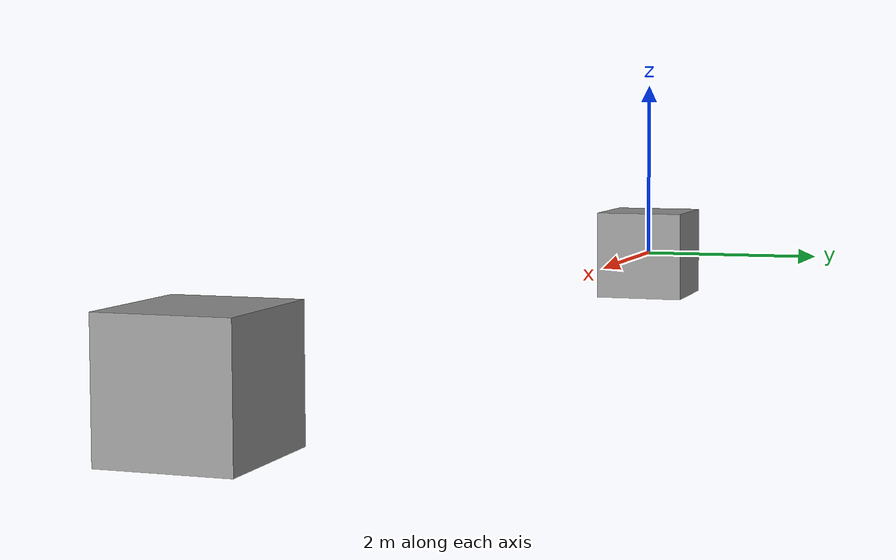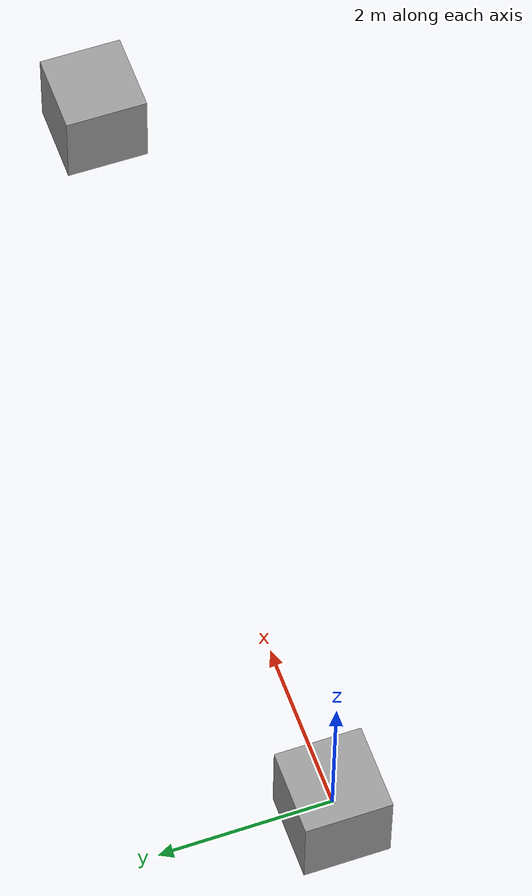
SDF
<?xml version='1.0'?>
<sdf version='1.7'>
  <model name='unit_box'>
    <link name='link'>
      <inertial>
        <mass>1</mass>
        <inertia>
          <ixx>0.166667</ixx>
          <ixy>0</ixy>
          <ixz>0</ixz>
          <iyy>0.166667</iyy>
          <iyz>0</iyz>
          <izz>0.166667</izz>
        </inertia>
        <pose>0 0 0 0 -0 0</pose>
      </inertial>
      <self_collide>0</self_collide>
      <enable_wind>0</enable_wind>
      <kinematic>0</kinematic>
      <pose>0 0 0 0 -0 0</pose>
      <gravity>1</gravity>
      <visual name='visual'>
        <geometry>
          <box>
            <size>1 1 1</size>
          </box>
        </geometry>
        <material>
          <script>
            <name>Gazebo/Grey</name>
            <uri>file://media/materials/scripts/gazebo.material</uri>
          </script>
          <shader type='pixel'>
            <normal_map>__default__</normal_map>
          </shader>
        </material>
        <pose>0 0 0 0 -0 0</pose>
        <transparency>0</transparency>
        <cast_shadows>1</cast_shadows>
      </visual>
      <collision name='collision'>
        <laser_retro>0</laser_retro>
        <max_contacts>10</max_contacts>
        <pose>0 0 0 0 -0 0</pose>
        <geometry>
          <box>
            <size>1 1 1</size>
          </box>
        </geometry>
        <surface>
          <friction>
            <ode>
              <mu>1</mu>
              <mu2>1</mu2>
              <fdir1>0 0 0</fdir1>
              <slip1>0</slip1>
              <slip2>0</slip2>
            </ode>
            <torsional>
              <coefficient>1</coefficient>
              <patch_radius>0</patch_radius>
              <surface_radius>0</surface_radius>
              <use_patch_radius>1</use_patch_radius>
              <ode>
                <slip>0</slip>
              </ode>
            </torsional>
          </friction>
          <bounce>
            <restitution_coefficient>0</restitution_coefficient>
            <threshold>1e+06</threshold>
          </bounce>
          <contact>
            <collide_without_contact>0</collide_without_contact>
            <collide_without_contact_bitmask>1</collide_without_contact_bitmask>
            <collide_bitmask>1</collide_bitmask>
            <ode>
              <soft_cfm>0</soft_cfm>
              <soft_erp>0.2</soft_erp>
              <kp>1e+13</kp>
              <kd>1</kd>
              <max_vel>0.01</max_vel>
              <min_depth>0</min_depth>
            </ode>
            <bullet>
              <split_impulse>1</split_impulse>
              <split_impulse_penetration_threshold>-0.01</split_impulse_penetration_threshold>
              <soft_cfm>0</soft_cfm>
              <soft_erp>0.2</soft_erp>
              <kp>1e+13</kp>
              <kd>1</kd>
            </bullet>
          </contact>
        </surface>
      </collision>
    </link>
    <link name='link_3'>
      <inertial>
        <mass>1</mass>
        <inertia>
          <ixx>0.166667</ixx>
          <ixy>0</ixy>
          <ixz>0</ixz>
          <iyy>0.166667</iyy>
          <iyz>0</iyz>
          <izz>0.166667</izz>
        </inertia>
      </inertial>
      <pose>9.74018 -0.528864 1e-05 -1e-05 0 0</pose>
      <visual name='visual'>
        <pose>0 0 0 0 -0 0</pose>
        <geometry>
          <box>
            <size>1 1 1</size>
          </box>
        </geometry>
        <material>
          <lighting>1</lighting>
          <script>
            <uri>file://media/materials/scripts/gazebo.material</uri>
            <name>Gazebo/Grey</name>
          </script>
          <shader type='pixel'/>
        </material>
        <transparency>0</transparency>
        <cast_shadows>1</cast_shadows>
      </visual>
      <collision name='collision'>
        <laser_retro>0</laser_retro>
        <max_contacts>10</max_contacts>
        <pose>0 0 0 0 -0 0</pose>
        <geometry>
          <box>
            <size>1 1 1</size>
          </box>
        </geometry>
        <surface>
          <friction>
            <ode>
              <mu>1</mu>
              <mu2>1</mu2>
              <fdir1>0 0 0</fdir1>
              <slip1>0</slip1>
              <slip2>0</slip2>
            </ode>
            <torsional>
              <coefficient>1</coefficient>
              <patch_radius>0</patch_radius>
              <surface_radius>0</surface_radius>
              <use_patch_radius>1</use_patch_radius>
              <ode>
                <slip>0</slip>
              </ode>
            </torsional>
          </friction>
          <bounce>
            <restitution_coefficient>0</restitution_coefficient>
            <threshold>1e+06</threshold>
          </bounce>
          <contact>
            <collide_without_contact>0</collide_without_contact>
            <collide_without_contact_bitmask>1</collide_without_contact_bitmask>
            <collide_bitmask>1</collide_bitmask>
            <ode>
              <soft_cfm>0</soft_cfm>
              <soft_erp>0.2</soft_erp>
              <kp>1e+13</kp>
              <kd>1</kd>
              <max_vel>0.01</max_vel>
              <min_depth>0</min_depth>
            </ode>
            <bullet>
              <split_impulse>1</split_impulse>
              <split_impulse_penetration_threshold>-0.01</split_impulse_penetration_threshold>
              <soft_cfm>0</soft_cfm>
              <soft_erp>0.2</soft_erp>
              <kp>1e+13</kp>
              <kd>1</kd>
            </bullet>
          </contact>
        </surface>
      </collision>
    </link>
    <static>1</static>
    <allow_auto_disable>1</allow_auto_disable>
  </model>
</sdf>
